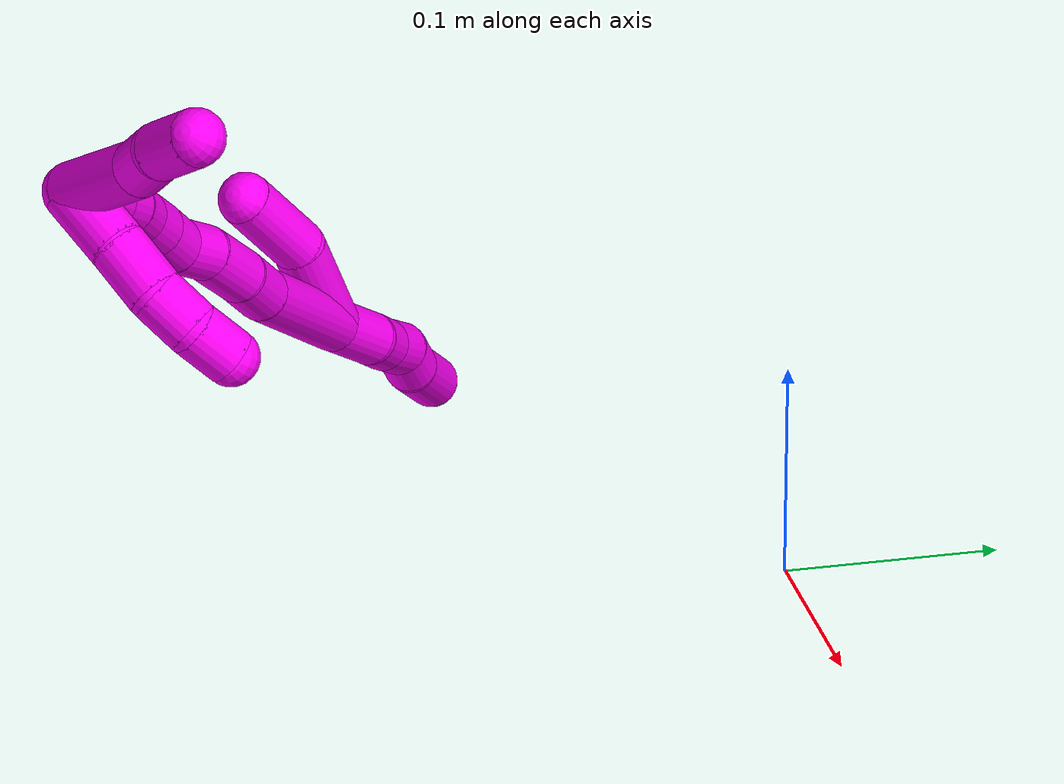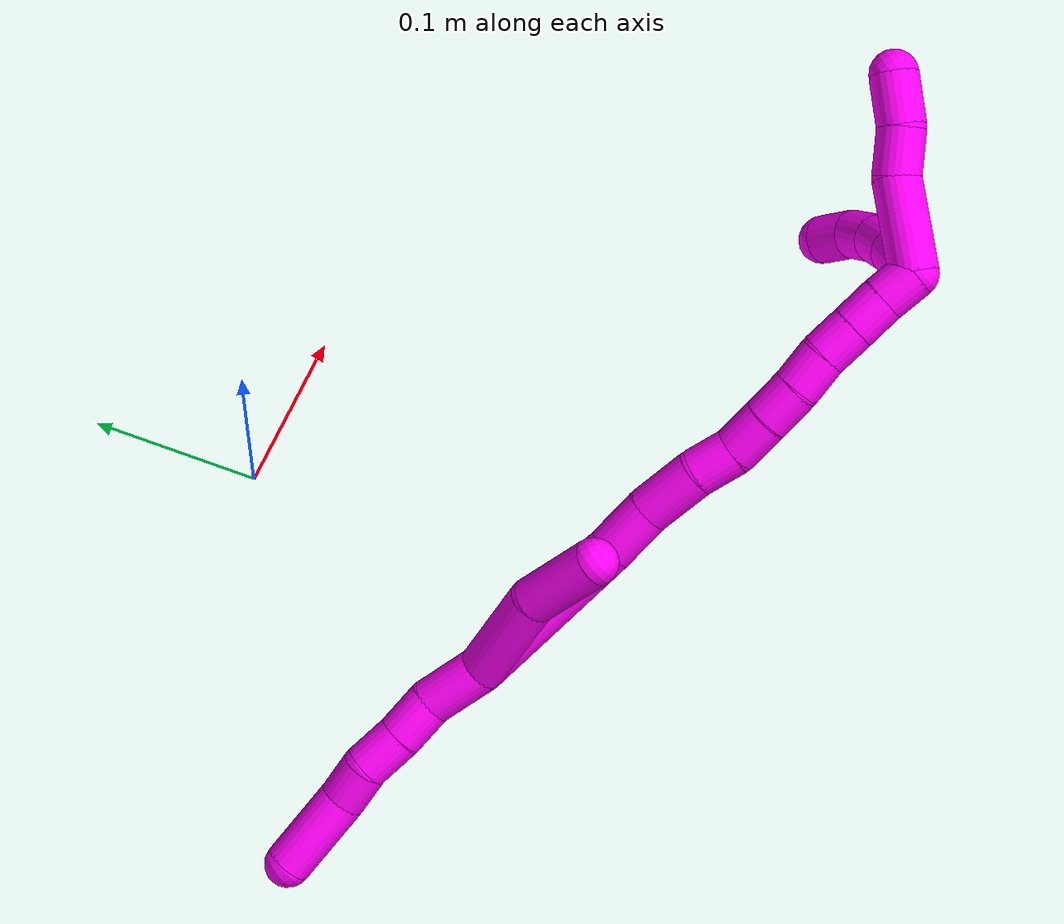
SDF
<sdf version="1.7">
 <world name="default">
  <model name="10">
   <static>0</static>
   <link name="10">
    <collision name="collision-cylinder-e_1_2_8">
     <pose>-0.000743 -0.001101 -0.016543 3.07516 -0.044763 -1.18564</pose>
     <geometry><cylinder><radius>0.0125</radius><length>0.033192</length></cylinder></geometry>
     <surface>
      <friction><ode><mu>1.16</mu><mu2>1.16</mu2><slip1>0</slip1><slip2>0</slip2></ode></friction>
      <contact><ode><kp>1e+06</kp><kd>1</kd><max_vel>0</max_vel><min_depth>0.001</min_depth></ode></contact>
     </surface>
    </collision>
    <visual name="visual-cylinder-e_1_2_8">
     <pose>-0.000743 -0.001101 -0.016543 3.07516 -0.044763 -1.18564</pose>
     <geometry><cylinder><radius>0.0125</radius><length>0.033192</length></cylinder></geometry>
     <material><ambient>1 0 0.964706 1</ambient></material>
    </visual>
    <collision name="collision-cylinder-e_2_8_9">
     <pose>-0.000431 0.000132 -0.044782 -2.94468 0.088202 -0.84031</pose>
     <geometry><cylinder><radius>0.0125</radius><length>0.023946</length></cylinder></geometry>
     <surface>
      <friction><ode><mu>1.16</mu><mu2>1.16</mu2><slip1>0</slip1><slip2>0</slip2></ode></friction>
      <contact><ode><kp>1e+06</kp><kd>1</kd><max_vel>0</max_vel><min_depth>0.001</min_depth></ode></contact>
     </surface>
    </collision>
    <visual name="visual-cylinder-e_2_8_9">
     <pose>-0.000431 0.000132 -0.044782 -2.94468 0.088202 -0.84031</pose>
     <geometry><cylinder><radius>0.0125</radius><length>0.023946</length></cylinder></geometry>
     <material><ambient>1 0 0.964706 1</ambient></material>
    </visual>
    <collision name="collision-cylinder-e_3_9_10">
     <pose>0.001787 0.00355 -0.068464 -3.05138 0.096306 -1.63621</pose>
     <geometry><cylinder><radius>0.0125</radius><length>0.024183</length></cylinder></geometry>
     <surface>
      <friction><ode><mu>1.16</mu><mu2>1.16</mu2><slip1>0</slip1><slip2>0</slip2></ode></friction>
      <contact><ode><kp>1e+06</kp><kd>1</kd><max_vel>0</max_vel><min_depth>0.001</min_depth></ode></contact>
     </surface>
    </collision>
    <visual name="visual-cylinder-e_3_9_10">
     <pose>0.001787 0.00355 -0.068464 -3.05138 0.096306 -1.63621</pose>
     <geometry><cylinder><radius>0.0125</radius><length>0.024183</length></cylinder></geometry>
     <material><ambient>1 0 0.964706 1</ambient></material>
    </visual>
    <collision name="collision-cylinder-e_4_10_11">
     <pose>0.000902 0.007596 -0.09132 -2.87558 -0.179767 1.18559</pose>
     <geometry><cylinder><radius>0.0125</radius><length>0.0229</length></cylinder></geometry>
     <surface>
      <friction><ode><mu>1.16</mu><mu2>1.16</mu2><slip1>0</slip1><slip2>0</slip2></ode></friction>
      <contact><ode><kp>1e+06</kp><kd>1</kd><max_vel>0</max_vel><min_depth>0.001</min_depth></ode></contact>
     </surface>
    </collision>
    <visual name="visual-cylinder-e_4_10_11">
     <pose>0.000902 0.007596 -0.09132 -2.87558 -0.179767 1.18559</pose>
     <geometry><cylinder><radius>0.0125</radius><length>0.0229</length></cylinder></geometry>
     <material><ambient>1 0 0.964706 1</ambient></material>
    </visual>
    <collision name="collision-cylinder-e_5_11_6">
     <pose>-3.1e-05 0.015712 -0.124463 -2.91414 0.048706 -0.420205</pose>
     <geometry><cylinder><radius>0.0125</radius><length>0.045779</length></cylinder></geometry>
     <surface>
      <friction><ode><mu>1.16</mu><mu2>1.16</mu2><slip1>0</slip1><slip2>0</slip2></ode></friction>
      <contact><ode><kp>1e+06</kp><kd>1</kd><max_vel>0</max_vel><min_depth>0.001</min_depth></ode></contact>
     </surface>
    </collision>
    <visual name="visual-cylinder-e_5_11_6">
     <pose>-3.1e-05 0.015712 -0.124463 -2.91414 0.048706 -0.420205</pose>
     <geometry><cylinder><radius>0.0125</radius><length>0.045779</length></cylinder></geometry>
     <material><ambient>1 0 0.964706 1</ambient></material>
    </visual>
    <collision name="collision-cylinder-e_1_2_12">
     <pose>0.013006 -0.005243 0.024577 0.210159 0.477585 0.051338</pose>
     <geometry><cylinder><radius>0.0125</radius><length>0.056592</length></cylinder></geometry>
     <surface>
      <friction><ode><mu>1.16</mu><mu2>1.16</mu2><slip1>0</slip1><slip2>0</slip2></ode></friction>
      <contact><ode><kp>1e+06</kp><kd>1</kd><max_vel>0</max_vel><min_depth>0.001</min_depth></ode></contact>
     </surface>
    </collision>
    <visual name="visual-cylinder-e_1_2_12">
     <pose>0.013006 -0.005243 0.024577 0.210159 0.477585 0.051338</pose>
     <geometry><cylinder><radius>0.0125</radius><length>0.056592</length></cylinder></geometry>
     <material><ambient>1 0 0.964706 1</ambient></material>
    </visual>
    <collision name="collision-cylinder-e_2_12_5">
     <pose>0.033799 -0.008422 0.069308 -0.102007 0.366971 -0.018946</pose>
     <geometry><cylinder><radius>0.0125</radius><length>0.043408</length></cylinder></geometry>
     <surface>
      <friction><ode><mu>1.16</mu><mu2>1.16</mu2><slip1>0</slip1><slip2>0</slip2></ode></friction>
      <contact><ode><kp>1e+06</kp><kd>1</kd><max_vel>0</max_vel><min_depth>0.001</min_depth></ode></contact>
     </surface>
    </collision>
    <visual name="visual-cylinder-e_2_12_5">
     <pose>0.033799 -0.008422 0.069308 -0.102007 0.366971 -0.018946</pose>
     <geometry><cylinder><radius>0.0125</radius><length>0.043408</length></cylinder></geometry>
     <material><ambient>1 0 0.964706 1</ambient></material>
    </visual>
    <collision name="collision-cylinder-e_1_2_13">
     <pose>-0.0015 -0.004702 0.045449 0.103083 -0.032812 -0.001693</pose>
     <geometry><cylinder><radius>0.0125</radius><length>0.091433</length></cylinder></geometry>
     <surface>
      <friction><ode><mu>1.16</mu><mu2>1.16</mu2><slip1>0</slip1><slip2>0</slip2></ode></friction>
      <contact><ode><kp>1e+06</kp><kd>1</kd><max_vel>0</max_vel><min_depth>0.001</min_depth></ode></contact>
     </surface>
    </collision>
    <visual name="visual-cylinder-e_1_2_13">
     <pose>-0.0015 -0.004702 0.045449 0.103083 -0.032812 -0.001693</pose>
     <geometry><cylinder><radius>0.0125</radius><length>0.091433</length></cylinder></geometry>
     <material><ambient>1 0 0.964706 1</ambient></material>
    </visual>
    <collision name="collision-cylinder-e_2_13_14">
     <pose>-0.001796 -0.011418 0.104979 0.142143 0.084446 0.006015</pose>
     <geometry><cylinder><radius>0.0125</radius><length>0.02855</length></cylinder></geometry>
     <surface>
      <friction><ode><mu>1.16</mu><mu2>1.16</mu2><slip1>0</slip1><slip2>0</slip2></ode></friction>
      <contact><ode><kp>1e+06</kp><kd>1</kd><max_vel>0</max_vel><min_depth>0.001</min_depth></ode></contact>
     </surface>
    </collision>
    <visual name="visual-cylinder-e_2_13_14">
     <pose>-0.001796 -0.011418 0.104979 0.142143 0.084446 0.006015</pose>
     <geometry><cylinder><radius>0.0125</radius><length>0.02855</length></cylinder></geometry>
     <material><ambient>1 0 0.964706 1</ambient></material>
    </visual>
    <collision name="collision-cylinder-e_3_14_15">
     <pose>0.001803 -0.013513 0.135035 0.00495 0.148796 0.000369</pose>
     <geometry><cylinder><radius>0.0125</radius><length>0.032308</length></cylinder></geometry>
     <surface>
      <friction><ode><mu>1.16</mu><mu2>1.16</mu2><slip1>0</slip1><slip2>0</slip2></ode></friction>
      <contact><ode><kp>1e+06</kp><kd>1</kd><max_vel>0</max_vel><min_depth>0.001</min_depth></ode></contact>
     </surface>
    </collision>
    <visual name="visual-cylinder-e_3_14_15">
     <pose>0.001803 -0.013513 0.135035 0.00495 0.148796 0.000369</pose>
     <geometry><cylinder><radius>0.0125</radius><length>0.032308</length></cylinder></geometry>
     <material><ambient>1 0 0.964706 1</ambient></material>
    </visual>
    <collision name="collision-cylinder-e_4_15_16">
     <pose>0.004187 -0.012236 0.162104 -0.121606 -0.000976 5.9e-05</pose>
     <geometry><cylinder><radius>0.0125</radius><length>0.022352</length></cylinder></geometry>
     <surface>
      <friction><ode><mu>1.16</mu><mu2>1.16</mu2><slip1>0</slip1><slip2>0</slip2></ode></friction>
      <contact><ode><kp>1e+06</kp><kd>1</kd><max_vel>0</max_vel><min_depth>0.001</min_depth></ode></contact>
     </surface>
    </collision>
    <visual name="visual-cylinder-e_4_15_16">
     <pose>0.004187 -0.012236 0.162104 -0.121606 -0.000976 5.9e-05</pose>
     <geometry><cylinder><radius>0.0125</radius><length>0.022352</length></cylinder></geometry>
     <material><ambient>1 0 0.964706 1</ambient></material>
    </visual>
    <collision name="collision-cylinder-e_5_16_17">
     <pose>0.005514 -0.012318 0.184419 0.127425 0.117672 0.007516</pose>
     <geometry><cylinder><radius>0.0125</radius><length>0.022784</length></cylinder></geometry>
     <surface>
      <friction><ode><mu>1.16</mu><mu2>1.16</mu2><slip1>0</slip1><slip2>0</slip2></ode></friction>
      <contact><ode><kp>1e+06</kp><kd>1</kd><max_vel>0</max_vel><min_depth>0.001</min_depth></ode></contact>
     </surface>
    </collision>
    <visual name="visual-cylinder-e_5_16_17">
     <pose>0.005514 -0.012318 0.184419 0.127425 0.117672 0.007516</pose>
     <geometry><cylinder><radius>0.0125</radius><length>0.022784</length></cylinder></geometry>
     <material><ambient>1 0 0.964706 1</ambient></material>
    </visual>
    <collision name="collision-cylinder-e_6_17_18">
     <pose>0.007404 -0.015311 0.206326 0.144568 0.051151 0.003705</pose>
     <geometry><cylinder><radius>0.0125</radius><length>0.021623</length></cylinder></geometry>
     <surface>
      <friction><ode><mu>1.16</mu><mu2>1.16</mu2><slip1>0</slip1><slip2>0</slip2></ode></friction>
      <contact><ode><kp>1e+06</kp><kd>1</kd><max_vel>0</max_vel><min_depth>0.001</min_depth></ode></contact>
     </surface>
    </collision>
    <visual name="visual-cylinder-e_6_17_18">
     <pose>0.007404 -0.015311 0.206326 0.144568 0.051151 0.003705</pose>
     <geometry><cylinder><radius>0.0125</radius><length>0.021623</length></cylinder></geometry>
     <material><ambient>1 0 0.964706 1</ambient></material>
    </visual>
    <collision name="collision-cylinder-e_7_18_19">
     <pose>0.007714 -0.019448 0.227139 0.249524 -0.023233 -0.002914</pose>
     <geometry><cylinder><radius>0.0125</radius><length>0.020909</length></cylinder></geometry>
     <surface>
      <friction><ode><mu>1.16</mu><mu2>1.16</mu2><slip1>0</slip1><slip2>0</slip2></ode></friction>
      <contact><ode><kp>1e+06</kp><kd>1</kd><max_vel>0</max_vel><min_depth>0.001</min_depth></ode></contact>
     </surface>
    </collision>
    <visual name="visual-cylinder-e_7_18_19">
     <pose>0.007714 -0.019448 0.227139 0.249524 -0.023233 -0.002914</pose>
     <geometry><cylinder><radius>0.0125</radius><length>0.020909</length></cylinder></geometry>
     <material><ambient>1 0 0.964706 1</ambient></material>
    </visual>
    <collision name="collision-cylinder-e_8_19_20">
     <pose>0.006562 -0.023089 0.247183 0.106517 -0.090914 -0.00485</pose>
     <geometry><cylinder><radius>0.0125</radius><length>0.020027</length></cylinder></geometry>
     <surface>
      <friction><ode><mu>1.16</mu><mu2>1.16</mu2><slip1>0</slip1><slip2>0</slip2></ode></friction>
      <contact><ode><kp>1e+06</kp><kd>1</kd><max_vel>0</max_vel><min_depth>0.001</min_depth></ode></contact>
     </surface>
    </collision>
    <visual name="visual-cylinder-e_8_19_20">
     <pose>0.006562 -0.023089 0.247183 0.106517 -0.090914 -0.00485</pose>
     <geometry><cylinder><radius>0.0125</radius><length>0.020027</length></cylinder></geometry>
     <material><ambient>1 0 0.964706 1</ambient></material>
    </visual>
    <collision name="collision-cylinder-e_9_20_21">
     <pose>0.004548 -0.025354 0.266968 0.121465 -0.110644 -0.006735</pose>
     <geometry><cylinder><radius>0.0125</radius><length>0.020008</length></cylinder></geometry>
     <surface>
      <friction><ode><mu>1.16</mu><mu2>1.16</mu2><slip1>0</slip1><slip2>0</slip2></ode></friction>
      <contact><ode><kp>1e+06</kp><kd>1</kd><max_vel>0</max_vel><min_depth>0.001</min_depth></ode></contact>
     </surface>
    </collision>
    <visual name="visual-cylinder-e_9_20_21">
     <pose>0.004548 -0.025354 0.266968 0.121465 -0.110644 -0.006735</pose>
     <geometry><cylinder><radius>0.0125</radius><length>0.020008</length></cylinder></geometry>
     <material><ambient>1 0 0.964706 1</ambient></material>
    </visual>
    <collision name="collision-cylinder-e_10_21_1">
     <pose>0.002514 -0.026976 0.286788 0.041912 -0.093042 -0.001951</pose>
     <geometry><cylinder><radius>0.0125</radius><length>0.020005</length></cylinder></geometry>
     <surface>
      <friction><ode><mu>1.16</mu><mu2>1.16</mu2><slip1>0</slip1><slip2>0</slip2></ode></friction>
      <contact><ode><kp>1e+06</kp><kd>1</kd><max_vel>0</max_vel><min_depth>0.001</min_depth></ode></contact>
     </surface>
    </collision>
    <visual name="visual-cylinder-e_10_21_1">
     <pose>0.002514 -0.026976 0.286788 0.041912 -0.093042 -0.001951</pose>
     <geometry><cylinder><radius>0.0125</radius><length>0.020005</length></cylinder></geometry>
     <material><ambient>1 0 0.964706 1</ambient></material>
    </visual>
    <collision name="collision-cylinder-e_1_1_22">
     <pose>-0.000427 -0.049027 0.307353 1.11463 -0.083289 -0.051925</pose>
     <geometry><cylinder><radius>0.0125</radius><length>0.048362</length></cylinder></geometry>
     <surface>
      <friction><ode><mu>1.16</mu><mu2>1.16</mu2><slip1>0</slip1><slip2>0</slip2></ode></friction>
      <contact><ode><kp>1e+06</kp><kd>1</kd><max_vel>0</max_vel><min_depth>0.001</min_depth></ode></contact>
     </surface>
    </collision>
    <visual name="visual-cylinder-e_1_1_22">
     <pose>-0.000427 -0.049027 0.307353 1.11463 -0.083289 -0.051925</pose>
     <geometry><cylinder><radius>0.0125</radius><length>0.048362</length></cylinder></geometry>
     <material><ambient>1 0 0.964706 1</ambient></material>
    </visual>
    <collision name="collision-cylinder-e_2_22_23">
     <pose>-0.002579 -0.079845 0.326393 0.828549 -0.0113 -0.004969</pose>
     <geometry><cylinder><radius>0.0125</radius><length>0.024929</length></cylinder></geometry>
     <surface>
      <friction><ode><mu>1.16</mu><mu2>1.16</mu2><slip1>0</slip1><slip2>0</slip2></ode></friction>
      <contact><ode><kp>1e+06</kp><kd>1</kd><max_vel>0</max_vel><min_depth>0.001</min_depth></ode></contact>
     </surface>
    </collision>
    <visual name="visual-cylinder-e_2_22_23">
     <pose>-0.002579 -0.079845 0.326393 0.828549 -0.0113 -0.004969</pose>
     <geometry><cylinder><radius>0.0125</radius><length>0.024929</length></cylinder></geometry>
     <material><ambient>1 0 0.964706 1</ambient></material>
    </visual>
    <collision name="collision-cylinder-e_3_23_4">
     <pose>-0.003721 -0.100775 0.341095 1.08 -0.074989 -0.044964</pose>
     <geometry><cylinder><radius>0.0125</radius><length>0.026709</length></cylinder></geometry>
     <surface>
      <friction><ode><mu>1.16</mu><mu2>1.16</mu2><slip1>0</slip1><slip2>0</slip2></ode></friction>
      <contact><ode><kp>1e+06</kp><kd>1</kd><max_vel>0</max_vel><min_depth>0.001</min_depth></ode></contact>
     </surface>
    </collision>
    <visual name="visual-cylinder-e_3_23_4">
     <pose>-0.003721 -0.100775 0.341095 1.08 -0.074989 -0.044964</pose>
     <geometry><cylinder><radius>0.0125</radius><length>0.026709</length></cylinder></geometry>
     <material><ambient>1 0 0.964706 1</ambient></material>
    </visual>
    <collision name="collision-cylinder-e_1_1_24">
     <pose>-0.011992 -0.035997 0.295427 1.72208 -1.00076 -1.13361</pose>
     <geometry><cylinder><radius>0.0125</radius><length>0.032255</length></cylinder></geometry>
     <surface>
      <friction><ode><mu>1.16</mu><mu2>1.16</mu2><slip1>0</slip1><slip2>0</slip2></ode></friction>
      <contact><ode><kp>1e+06</kp><kd>1</kd><max_vel>0</max_vel><min_depth>0.001</min_depth></ode></contact>
     </surface>
    </collision>
    <visual name="visual-cylinder-e_1_1_24">
     <pose>-0.011992 -0.035997 0.295427 1.72208 -1.00076 -1.13361</pose>
     <geometry><cylinder><radius>0.0125</radius><length>0.032255</length></cylinder></geometry>
     <material><ambient>1 0 0.964706 1</ambient></material>
    </visual>
    <collision name="collision-cylinder-e_2_24_25">
     <pose>-0.03666 -0.050786 0.291575 1.96056 -1.02824 -1.40033</pose>
     <geometry><cylinder><radius>0.0125</radius><length>0.025899</length></cylinder></geometry>
     <surface>
      <friction><ode><mu>1.16</mu><mu2>1.16</mu2><slip1>0</slip1><slip2>0</slip2></ode></friction>
      <contact><ode><kp>1e+06</kp><kd>1</kd><max_vel>0</max_vel><min_depth>0.001</min_depth></ode></contact>
     </surface>
    </collision>
    <visual name="visual-cylinder-e_2_24_25">
     <pose>-0.03666 -0.050786 0.291575 1.96056 -1.02824 -1.40033</pose>
     <geometry><cylinder><radius>0.0125</radius><length>0.025899</length></cylinder></geometry>
     <material><ambient>1 0 0.964706 1</ambient></material>
    </visual>
    <collision name="collision-cylinder-e_3_25_26">
     <pose>-0.05555 -0.062287 0.284399 2.28781 -0.835661 -1.54656</pose>
     <geometry><cylinder><radius>0.0125</radius><length>0.021033</length></cylinder></geometry>
     <surface>
      <friction><ode><mu>1.16</mu><mu2>1.16</mu2><slip1>0</slip1><slip2>0</slip2></ode></friction>
      <contact><ode><kp>1e+06</kp><kd>1</kd><max_vel>0</max_vel><min_depth>0.001</min_depth></ode></contact>
     </surface>
    </collision>
    <visual name="visual-cylinder-e_3_25_26">
     <pose>-0.05555 -0.062287 0.284399 2.28781 -0.835661 -1.54656</pose>
     <geometry><cylinder><radius>0.0125</radius><length>0.021033</length></cylinder></geometry>
     <material><ambient>1 0 0.964706 1</ambient></material>
    </visual>
    <collision name="collision-cylinder-e_4_26_3">
     <pose>-0.069253 -0.071791 0.272286 2.63111 -0.603119 -1.74558</pose>
     <geometry><cylinder><radius>0.0125</radius><length>0.020813</length></cylinder></geometry>
     <surface>
      <friction><ode><mu>1.16</mu><mu2>1.16</mu2><slip1>0</slip1><slip2>0</slip2></ode></friction>
      <contact><ode><kp>1e+06</kp><kd>1</kd><max_vel>0</max_vel><min_depth>0.001</min_depth></ode></contact>
     </surface>
    </collision>
    <visual name="visual-cylinder-e_4_26_3">
     <pose>-0.069253 -0.071791 0.272286 2.63111 -0.603119 -1.74558</pose>
     <geometry><cylinder><radius>0.0125</radius><length>0.020813</length></cylinder></geometry>
     <material><ambient>1 0 0.964706 1</ambient></material>
    </visual>
    <collision name="collision-sphere-3">
     <pose>-0.075156 -0.075979 0.264808 0 -0 0</pose>
     <geometry><sphere><radius>0.0125</radius></sphere></geometry>
     <surface>
      <friction><ode><mu>1.16</mu><mu2>1.16</mu2><slip1>0</slip1><slip2>0</slip2></ode></friction>
      <contact><ode><kp>1e+06</kp><kd>1</kd><max_vel>0</max_vel><min_depth>0.001</min_depth></ode></contact>
     </surface>
    </collision>
    <visual name="visual-sphere-3">
     <pose>-0.075156 -0.075979 0.264808 0 -0 0</pose>
     <geometry><sphere><radius>0.0125</radius></sphere></geometry>
     <material><ambient>1 0 0.964706 1</ambient></material>
    </visual>
    <collision name="collision-sphere-26">
     <pose>-0.063351 -0.067604 0.279764 0 -0 0</pose>
     <geometry><sphere><radius>0.0125</radius></sphere></geometry>
     <surface>
      <friction><ode><mu>1.16</mu><mu2>1.16</mu2><slip1>0</slip1><slip2>0</slip2></ode></friction>
      <contact><ode><kp>1e+06</kp><kd>1</kd><max_vel>0</max_vel><min_depth>0.001</min_depth></ode></contact>
     </surface>
    </collision>
    <visual name="visual-sphere-26">
     <pose>-0.063351 -0.067604 0.279764 0 -0 0</pose>
     <geometry><sphere><radius>0.0125</radius></sphere></geometry>
     <material><ambient>1 0 0.964706 1</ambient></material>
    </visual>
    <collision name="collision-sphere-25">
     <pose>-0.047749 -0.056971 0.289034 0 -0 0</pose>
     <geometry><sphere><radius>0.0125</radius></sphere></geometry>
     <surface>
      <friction><ode><mu>1.16</mu><mu2>1.16</mu2><slip1>0</slip1><slip2>0</slip2></ode></friction>
      <contact><ode><kp>1e+06</kp><kd>1</kd><max_vel>0</max_vel><min_depth>0.001</min_depth></ode></contact>
     </surface>
    </collision>
    <visual name="visual-sphere-25">
     <pose>-0.047749 -0.056971 0.289034 0 -0 0</pose>
     <geometry><sphere><radius>0.0125</radius></sphere></geometry>
     <material><ambient>1 0 0.964706 1</ambient></material>
    </visual>
    <collision name="collision-sphere-24">
     <pose>-0.02557 -0.044601 0.294115 0 -0 0</pose>
     <geometry><sphere><radius>0.0125</radius></sphere></geometry>
     <surface>
      <friction><ode><mu>1.16</mu><mu2>1.16</mu2><slip1>0</slip1><slip2>0</slip2></ode></friction>
      <contact><ode><kp>1e+06</kp><kd>1</kd><max_vel>0</max_vel><min_depth>0.001</min_depth></ode></contact>
     </surface>
    </collision>
    <visual name="visual-sphere-24">
     <pose>-0.02557 -0.044601 0.294115 0 -0 0</pose>
     <geometry><sphere><radius>0.0125</radius></sphere></geometry>
     <material><ambient>1 0 0.964706 1</ambient></material>
    </visual>
    <collision name="collision-sphere-4">
     <pose>-0.004721 -0.11252 0.347371 0 -0 0</pose>
     <geometry><sphere><radius>0.0125</radius></sphere></geometry>
     <surface>
      <friction><ode><mu>1.16</mu><mu2>1.16</mu2><slip1>0</slip1><slip2>0</slip2></ode></friction>
      <contact><ode><kp>1e+06</kp><kd>1</kd><max_vel>0</max_vel><min_depth>0.001</min_depth></ode></contact>
     </surface>
    </collision>
    <visual name="visual-sphere-4">
     <pose>-0.004721 -0.11252 0.347371 0 -0 0</pose>
     <geometry><sphere><radius>0.0125</radius></sphere></geometry>
     <material><ambient>1 0 0.964706 1</ambient></material>
    </visual>
    <collision name="collision-sphere-23">
     <pose>-0.00272 -0.08903 0.334818 0 -0 0</pose>
     <geometry><sphere><radius>0.0125</radius></sphere></geometry>
     <surface>
      <friction><ode><mu>1.16</mu><mu2>1.16</mu2><slip1>0</slip1><slip2>0</slip2></ode></friction>
      <contact><ode><kp>1e+06</kp><kd>1</kd><max_vel>0</max_vel><min_depth>0.001</min_depth></ode></contact>
     </surface>
    </collision>
    <visual name="visual-sphere-23">
     <pose>-0.00272 -0.08903 0.334818 0 -0 0</pose>
     <geometry><sphere><radius>0.0125</radius></sphere></geometry>
     <material><ambient>1 0 0.964706 1</ambient></material>
    </visual>
    <collision name="collision-sphere-22">
     <pose>-0.002439 -0.07066 0.317968 0 -0 0</pose>
     <geometry><sphere><radius>0.0125</radius></sphere></geometry>
     <surface>
      <friction><ode><mu>1.16</mu><mu2>1.16</mu2><slip1>0</slip1><slip2>0</slip2></ode></friction>
      <contact><ode><kp>1e+06</kp><kd>1</kd><max_vel>0</max_vel><min_depth>0.001</min_depth></ode></contact>
     </surface>
    </collision>
    <visual name="visual-sphere-22">
     <pose>-0.002439 -0.07066 0.317968 0 -0 0</pose>
     <geometry><sphere><radius>0.0125</radius></sphere></geometry>
     <material><ambient>1 0 0.964706 1</ambient></material>
    </visual>
    <collision name="collision-sphere-1">
     <pose>0.001585 -0.027393 0.296738 0 -0 0</pose>
     <geometry><sphere><radius>0.0125</radius></sphere></geometry>
     <surface>
      <friction><ode><mu>1.16</mu><mu2>1.16</mu2><slip1>0</slip1><slip2>0</slip2></ode></friction>
      <contact><ode><kp>1e+06</kp><kd>1</kd><max_vel>0</max_vel><min_depth>0.001</min_depth></ode></contact>
     </surface>
    </collision>
    <visual name="visual-sphere-1">
     <pose>0.001585 -0.027393 0.296738 0 -0 0</pose>
     <geometry><sphere><radius>0.0125</radius></sphere></geometry>
     <material><ambient>1 0 0.964706 1</ambient></material>
    </visual>
    <collision name="collision-sphere-21">
     <pose>0.003444 -0.026559 0.276837 0 -0 0</pose>
     <geometry><sphere><radius>0.0125</radius></sphere></geometry>
     <surface>
      <friction><ode><mu>1.16</mu><mu2>1.16</mu2><slip1>0</slip1><slip2>0</slip2></ode></friction>
      <contact><ode><kp>1e+06</kp><kd>1</kd><max_vel>0</max_vel><min_depth>0.001</min_depth></ode></contact>
     </surface>
    </collision>
    <visual name="visual-sphere-21">
     <pose>0.003444 -0.026559 0.276837 0 -0 0</pose>
     <geometry><sphere><radius>0.0125</radius></sphere></geometry>
     <material><ambient>1 0 0.964706 1</ambient></material>
    </visual>
    <collision name="collision-sphere-6">
     <pose>0.001084 0.020868 -0.146736 0 -0 0</pose>
     <geometry><sphere><radius>0.0125</radius></sphere></geometry>
     <surface>
      <friction><ode><mu>1.16</mu><mu2>1.16</mu2><slip1>0</slip1><slip2>0</slip2></ode></friction>
      <contact><ode><kp>1e+06</kp><kd>1</kd><max_vel>0</max_vel><min_depth>0.001</min_depth></ode></contact>
     </surface>
    </collision>
    <visual name="visual-sphere-6">
     <pose>0.001084 0.020868 -0.146736 0 -0 0</pose>
     <geometry><sphere><radius>0.0125</radius></sphere></geometry>
     <material><ambient>1 0 0.964706 1</ambient></material>
    </visual>
    <collision name="collision-sphere-11">
     <pose>-0.001145 0.010557 -0.102189 0 -0 0</pose>
     <geometry><sphere><radius>0.0125</radius></sphere></geometry>
     <surface>
      <friction><ode><mu>1.16</mu><mu2>1.16</mu2><slip1>0</slip1><slip2>0</slip2></ode></friction>
      <contact><ode><kp>1e+06</kp><kd>1</kd><max_vel>0</max_vel><min_depth>0.001</min_depth></ode></contact>
     </surface>
    </collision>
    <visual name="visual-sphere-11">
     <pose>-0.001145 0.010557 -0.102189 0 -0 0</pose>
     <geometry><sphere><radius>0.0125</radius></sphere></geometry>
     <material><ambient>1 0 0.964706 1</ambient></material>
    </visual>
    <collision name="collision-sphere-10">
     <pose>0.002949 0.004634 -0.080451 0 -0 0</pose>
     <geometry><sphere><radius>0.0125</radius></sphere></geometry>
     <surface>
      <friction><ode><mu>1.16</mu><mu2>1.16</mu2><slip1>0</slip1><slip2>0</slip2></ode></friction>
      <contact><ode><kp>1e+06</kp><kd>1</kd><max_vel>0</max_vel><min_depth>0.001</min_depth></ode></contact>
     </surface>
    </collision>
    <visual name="visual-sphere-10">
     <pose>0.002949 0.004634 -0.080451 0 -0 0</pose>
     <geometry><sphere><radius>0.0125</radius></sphere></geometry>
     <material><ambient>1 0 0.964706 1</ambient></material>
    </visual>
    <collision name="collision-sphere-9">
     <pose>0.000624 0.002465 -0.056477 0 -0 0</pose>
     <geometry><sphere><radius>0.0125</radius></sphere></geometry>
     <surface>
      <friction><ode><mu>1.16</mu><mu2>1.16</mu2><slip1>0</slip1><slip2>0</slip2></ode></friction>
      <contact><ode><kp>1e+06</kp><kd>1</kd><max_vel>0</max_vel><min_depth>0.001</min_depth></ode></contact>
     </surface>
    </collision>
    <visual name="visual-sphere-9">
     <pose>0.000624 0.002465 -0.056477 0 -0 0</pose>
     <geometry><sphere><radius>0.0125</radius></sphere></geometry>
     <material><ambient>1 0 0.964706 1</ambient></material>
    </visual>
    <collision name="collision-sphere-2">
     <geometry><sphere><radius>0.0125</radius></sphere></geometry>
     <surface>
      <friction><ode><mu>1.16</mu><mu2>1.16</mu2><slip1>0</slip1><slip2>0</slip2></ode></friction>
      <contact><ode><kp>1e+06</kp><kd>1</kd><max_vel>0</max_vel><min_depth>0.001</min_depth></ode></contact>
     </surface>
    </collision>
    <visual name="visual-sphere-2">
     <geometry><sphere><radius>0.0125</radius></sphere></geometry>
     <material><ambient>1 0 0.964706 1</ambient></material>
    </visual>
    <collision name="collision-sphere-19">
     <pose>0.007471 -0.022029 0.237267 0 -0 0</pose>
     <geometry><sphere><radius>0.0125</radius></sphere></geometry>
     <surface>
      <friction><ode><mu>1.16</mu><mu2>1.16</mu2><slip1>0</slip1><slip2>0</slip2></ode></friction>
      <contact><ode><kp>1e+06</kp><kd>1</kd><max_vel>0</max_vel><min_depth>0.001</min_depth></ode></contact>
     </surface>
    </collision>
    <visual name="visual-sphere-19">
     <pose>0.007471 -0.022029 0.237267 0 -0 0</pose>
     <geometry><sphere><radius>0.0125</radius></sphere></geometry>
     <material><ambient>1 0 0.964706 1</ambient></material>
    </visual>
    <collision name="collision-sphere-8">
     <pose>-0.001485 -0.002201 -0.033086 0 -0 0</pose>
     <geometry><sphere><radius>0.0125</radius></sphere></geometry>
     <surface>
      <friction><ode><mu>1.16</mu><mu2>1.16</mu2><slip1>0</slip1><slip2>0</slip2></ode></friction>
      <contact><ode><kp>1e+06</kp><kd>1</kd><max_vel>0</max_vel><min_depth>0.001</min_depth></ode></contact>
     </surface>
    </collision>
    <visual name="visual-sphere-8">
     <pose>-0.001485 -0.002201 -0.033086 0 -0 0</pose>
     <geometry><sphere><radius>0.0125</radius></sphere></geometry>
     <material><ambient>1 0 0.964706 1</ambient></material>
    </visual>
    <collision name="collision-sphere-12">
     <pose>0.026012 -0.010485 0.049154 0 -0 0</pose>
     <geometry><sphere><radius>0.0125</radius></sphere></geometry>
     <surface>
      <friction><ode><mu>1.16</mu><mu2>1.16</mu2><slip1>0</slip1><slip2>0</slip2></ode></friction>
      <contact><ode><kp>1e+06</kp><kd>1</kd><max_vel>0</max_vel><min_depth>0.001</min_depth></ode></contact>
     </surface>
    </collision>
    <visual name="visual-sphere-12">
     <pose>0.026012 -0.010485 0.049154 0 -0 0</pose>
     <geometry><sphere><radius>0.0125</radius></sphere></geometry>
     <material><ambient>1 0 0.964706 1</ambient></material>
    </visual>
    <collision name="collision-sphere-5">
     <pose>0.041586 -0.006359 0.089461 0 -0 0</pose>
     <geometry><sphere><radius>0.0125</radius></sphere></geometry>
     <surface>
      <friction><ode><mu>1.16</mu><mu2>1.16</mu2><slip1>0</slip1><slip2>0</slip2></ode></friction>
      <contact><ode><kp>1e+06</kp><kd>1</kd><max_vel>0</max_vel><min_depth>0.001</min_depth></ode></contact>
     </surface>
    </collision>
    <visual name="visual-sphere-5">
     <pose>0.041586 -0.006359 0.089461 0 -0 0</pose>
     <geometry><sphere><radius>0.0125</radius></sphere></geometry>
     <material><ambient>1 0 0.964706 1</ambient></material>
    </visual>
    <collision name="collision-sphere-13">
     <pose>-0.003 -0.009403 0.090899 0 -0 0</pose>
     <geometry><sphere><radius>0.0125</radius></sphere></geometry>
     <surface>
      <friction><ode><mu>1.16</mu><mu2>1.16</mu2><slip1>0</slip1><slip2>0</slip2></ode></friction>
      <contact><ode><kp>1e+06</kp><kd>1</kd><max_vel>0</max_vel><min_depth>0.001</min_depth></ode></contact>
     </surface>
    </collision>
    <visual name="visual-sphere-13">
     <pose>-0.003 -0.009403 0.090899 0 -0 0</pose>
     <geometry><sphere><radius>0.0125</radius></sphere></geometry>
     <material><ambient>1 0 0.964706 1</ambient></material>
    </visual>
    <collision name="collision-sphere-14">
     <pose>-0.000592 -0.013433 0.11906 0 -0 0</pose>
     <geometry><sphere><radius>0.0125</radius></sphere></geometry>
     <surface>
      <friction><ode><mu>1.16</mu><mu2>1.16</mu2><slip1>0</slip1><slip2>0</slip2></ode></friction>
      <contact><ode><kp>1e+06</kp><kd>1</kd><max_vel>0</max_vel><min_depth>0.001</min_depth></ode></contact>
     </surface>
    </collision>
    <visual name="visual-sphere-14">
     <pose>-0.000592 -0.013433 0.11906 0 -0 0</pose>
     <geometry><sphere><radius>0.0125</radius></sphere></geometry>
     <material><ambient>1 0 0.964706 1</ambient></material>
    </visual>
    <collision name="collision-sphere-15">
     <pose>0.004198 -0.013592 0.151011 0 -0 0</pose>
     <geometry><sphere><radius>0.0125</radius></sphere></geometry>
     <surface>
      <friction><ode><mu>1.16</mu><mu2>1.16</mu2><slip1>0</slip1><slip2>0</slip2></ode></friction>
      <contact><ode><kp>1e+06</kp><kd>1</kd><max_vel>0</max_vel><min_depth>0.001</min_depth></ode></contact>
     </surface>
    </collision>
    <visual name="visual-sphere-15">
     <pose>0.004198 -0.013592 0.151011 0 -0 0</pose>
     <geometry><sphere><radius>0.0125</radius></sphere></geometry>
     <material><ambient>1 0 0.964706 1</ambient></material>
    </visual>
    <collision name="collision-sphere-16">
     <pose>0.004176 -0.01088 0.173198 0 -0 0</pose>
     <geometry><sphere><radius>0.0125</radius></sphere></geometry>
     <surface>
      <friction><ode><mu>1.16</mu><mu2>1.16</mu2><slip1>0</slip1><slip2>0</slip2></ode></friction>
      <contact><ode><kp>1e+06</kp><kd>1</kd><max_vel>0</max_vel><min_depth>0.001</min_depth></ode></contact>
     </surface>
    </collision>
    <visual name="visual-sphere-16">
     <pose>0.004176 -0.01088 0.173198 0 -0 0</pose>
     <geometry><sphere><radius>0.0125</radius></sphere></geometry>
     <material><ambient>1 0 0.964706 1</ambient></material>
    </visual>
    <collision name="collision-sphere-17">
     <pose>0.006851 -0.013756 0.195641 0 -0 0</pose>
     <geometry><sphere><radius>0.0125</radius></sphere></geometry>
     <surface>
      <friction><ode><mu>1.16</mu><mu2>1.16</mu2><slip1>0</slip1><slip2>0</slip2></ode></friction>
      <contact><ode><kp>1e+06</kp><kd>1</kd><max_vel>0</max_vel><min_depth>0.001</min_depth></ode></contact>
     </surface>
    </collision>
    <visual name="visual-sphere-17">
     <pose>0.006851 -0.013756 0.195641 0 -0 0</pose>
     <geometry><sphere><radius>0.0125</radius></sphere></geometry>
     <material><ambient>1 0 0.964706 1</ambient></material>
    </visual>
    <collision name="collision-sphere-18">
     <pose>0.007957 -0.016867 0.217011 0 -0 0</pose>
     <geometry><sphere><radius>0.0125</radius></sphere></geometry>
     <surface>
      <friction><ode><mu>1.16</mu><mu2>1.16</mu2><slip1>0</slip1><slip2>0</slip2></ode></friction>
      <contact><ode><kp>1e+06</kp><kd>1</kd><max_vel>0</max_vel><min_depth>0.001</min_depth></ode></contact>
     </surface>
    </collision>
    <visual name="visual-sphere-18">
     <pose>0.007957 -0.016867 0.217011 0 -0 0</pose>
     <geometry><sphere><radius>0.0125</radius></sphere></geometry>
     <material><ambient>1 0 0.964706 1</ambient></material>
    </visual>
    <collision name="collision-sphere-20">
     <pose>0.005653 -0.024149 0.257098 0 -0 0</pose>
     <geometry><sphere><radius>0.0125</radius></sphere></geometry>
     <surface>
      <friction><ode><mu>1.16</mu><mu2>1.16</mu2><slip1>0</slip1><slip2>0</slip2></ode></friction>
      <contact><ode><kp>1e+06</kp><kd>1</kd><max_vel>0</max_vel><min_depth>0.001</min_depth></ode></contact>
     </surface>
    </collision>
    <visual name="visual-sphere-20">
     <pose>0.005653 -0.024149 0.257098 0 -0 0</pose>
     <geometry><sphere><radius>0.0125</radius></sphere></geometry>
     <material><ambient>1 0 0.964706 1</ambient></material>
    </visual>
    <inertial>
     <pose>-0.001622 -0.021392 0.131672 0 -0 0</pose>
     <mass>0.75</mass>
     <inertia><ixx>0.00012</ixx><ixy>0</ixy><ixz>0</ixz><iyy>8.5e-05</iyy><iyz>0</iyz><izz>4.6e-05</izz></inertia>
    </inertial>
   </link>
   <pose>-0.112576 -0.186031 0.091837 -0.596835 -0.912274 3.12666</pose>
  </model>
 </world>
</sdf>
